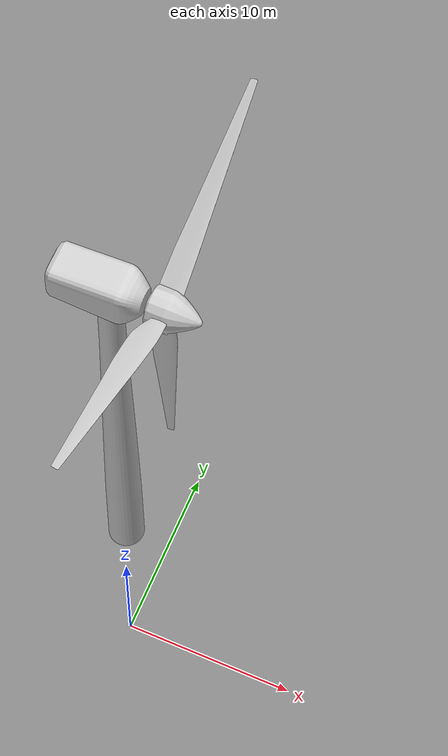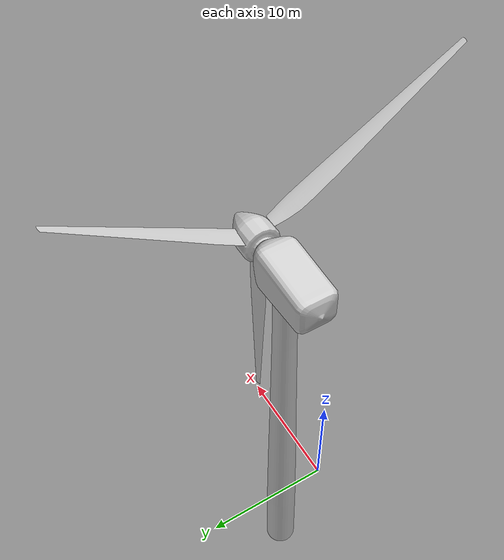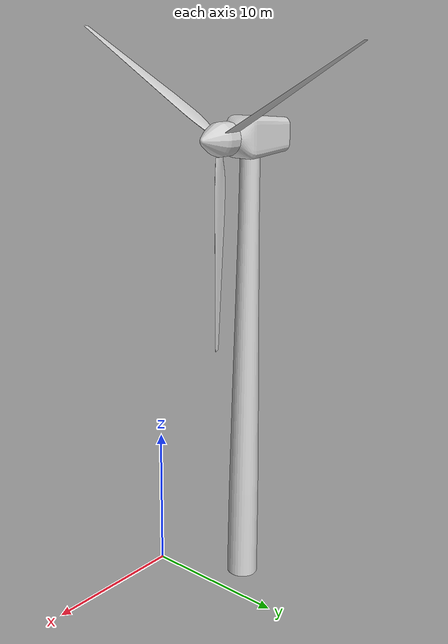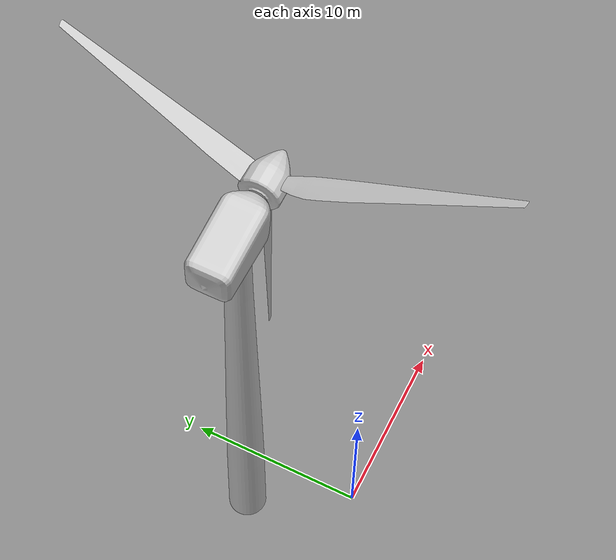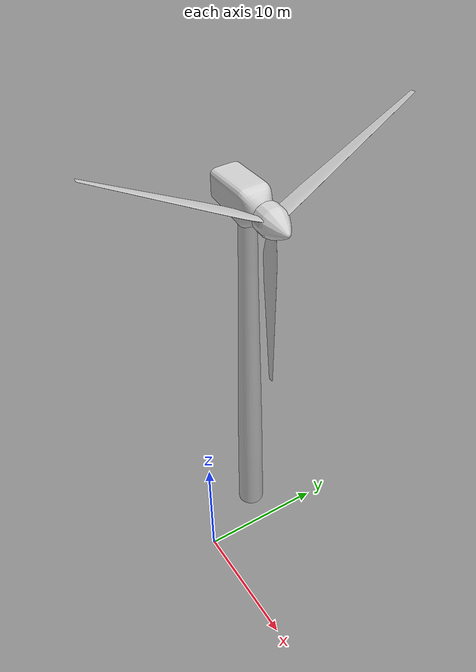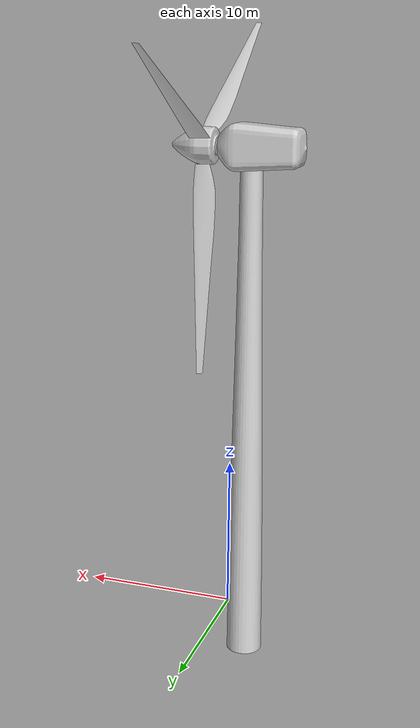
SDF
<sdf version="1.9">
 <world name="js_turbine">
  <physics name="1ms" type="ignore">
   <max_step_size>0.001</max_step_size>
   <real_time_factor>-1.0</real_time_factor>
  </physics>
  <plugin filename="gz-sim-wind-effects-system" name="gz::sim::systems::WindEffects">
   <force_approximation_scaling_factor>1</force_approximation_scaling_factor>
  </plugin>
  <plugin filename="gz-sim-contact-system" name="gz::sim::systems::Contact"/>
  <plugin filename="gz-sim-physics-system" name="gz::sim::systems::Physics"/>
  <plugin filename="gz-sim-sensors-system" name="gz::sim::systems::Sensors">
   <render_engine>ogre2</render_engine>
  </plugin>
  <plugin filename="gz-sim-user-commands-system" name="gz::sim::systems::UserCommands"/>
  <plugin filename="gz-sim-scene-broadcaster-system" name="gz::sim::systems::SceneBroadcaster"/>
  <plugin filename="gz-sim-imu-system" name="gz::sim::systems::Imu"/>
  <plugin filename="gz-sim-navsat-system" name="gz::sim::systems::NavSat"/>
  <scene><ambient>1.0 1.0 1.0</ambient><background>0.8 0.8 0.8</background></scene>
  <spherical_coordinates>
   <latitude_deg>-35.363262</latitude_deg>
   <longitude_deg>149.165237</longitude_deg>
   <elevation>584</elevation>
   <heading_deg>0</heading_deg>
   <surface_model>EARTH_WGS84</surface_model>
  </spherical_coordinates>
  <light type="directional" name="sun">
   <pose>0 0 10 0 0 0</pose>
   <diffuse>0.8 0.8 0.8 1</diffuse>
   <specular>0.2 0.2 0.2 1</specular>
   <attenuation>
    <range>1000</range>
    <constant>0.9</constant>
    <linear>0.01</linear>
    <quadratic>0.001</quadratic>
   </attenuation>
   <direction>-0.4 0.2 -0.8</direction>
  </light>
  <model name="axes">
   <static>1</static>
   <link name="link">
    <sensor name="navsat_sensor" type="navsat"><always_on>1</always_on><update_rate>1</update_rate></sensor>
   </link>
  </model>
  <include><uri>model://wind_turbine</uri><pose degrees="true">-2.736 5.5 0 0 0 90</pose></include>
 </world>
</sdf>

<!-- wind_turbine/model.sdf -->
<sdf version='1.9'>
  <model name='wind_turbine'>
  <static>true</static>
    <link name='tower_link'>
      <collision name="tower_collision">
        <geometry>
          <mesh>
            <uri>model://wind_turbine/meshes/tower.stl</uri>
            <scale> 0.072 0.072 0.125 </scale>
          </mesh>
        </geometry>
      </collision>
      <visual name="tower_visual">
        <geometry>
          <mesh>
            <uri>model://wind_turbine/meshes/tower.stl</uri>
            <scale> 0.072 0.072 0.125 </scale>
          </mesh>
        </geometry>
        <material>
          <ambient>0.8 0.8 0.8 1</ambient>
          <diffuse>0.8 0.8 0.8 1</diffuse>
          <specular>0.1 0.1 0.1 1.0</specular>
           <pbr>
            <metal>
              <roughness>0.6</roughness>
              <metalness>0.6</metalness>
            </metal>
          </pbr>
        </material>
      </visual>
    </link>

    <link name="generator_link">
      <pose relative_to="tower_link">0 0 31.5 0 0 1.57</pose>
      <visual name="generator_visual">
        <geometry>
          <mesh>
            <uri>model://wind_turbine/meshes/generator.stl</uri>
            <scale> 0.072 0.072 0.072 </scale>
          </mesh>
        </geometry>
        <material>
          <ambient>0.8 0.8 0.8 1</ambient>
          <diffuse>0.8 0.8 0.8 1</diffuse>
          <specular>0.1 0.1 0.1 1.0</specular>
           <pbr>
            <metal>
              <roughness>0.6</roughness>
              <metalness>0.6</metalness>
            </metal>
          </pbr>
        </material>
      </visual>
    </link>

    <link name="hub_link">
      <pose relative_to="generator_link">-3.3984 0 0 0 0 0</pose>
      <visual name="hub_visual">
      <geometry>
          <mesh>
            <uri>model://wind_turbine/meshes/hub.stl</uri>
            <scale> 0.072 0.072 0.072 </scale>
          </mesh>
        </geometry>
        <material>
          <ambient>0.8 0.8 0.8 1</ambient>
          <diffuse>0.8 0.8 0.8 1</diffuse>
          <specular>0.1 0.1 0.1 1.0</specular>
           <pbr>
            <metal>
              <roughness>0.6</roughness>
              <metalness>0.6</metalness>
            </metal>
          </pbr>
        </material>
      </visual>
    </link>

    <link name='blade1_link'>
    <pose relative_to="hub_link">0 0 -1.08 0 0 .15</pose>
      <collision name="blade1_collision">
        <geometry>
          <mesh>
            <uri>model://wind_turbine/meshes/blade.stl</uri>
            <scale> 0.05 0.01 0.072 </scale>
          </mesh>
        </geometry>
        <surface>
                <friction>
                    <ode>
                        <mu>
                            10000.0
                        </mu>
                        <mu2>
                            10000.0
                        </mu2>
                    </ode>
                </friction>
                <contact>
                    <ode>
                    <max_vel>0</max_vel>
                    <min_depth>0.001</min_depth>
                    </ode>
                </contact>
                </surface>
      </collision>
      <visual name="blade1_visual">
        <geometry>
          <mesh>
            <uri>model://wind_turbine/meshes/blade.stl</uri>
            <scale> 0.05 0.01 0.072 </scale>
          </mesh>
        </geometry>
        <material>
          <ambient>0.8 0.8 0.8 1</ambient>
          <diffuse>0.8 0.8 0.8 1</diffuse>
          <specular>0.1 0.1 0.1 1.0</specular>
           <pbr>
            <metal>
              <roughness>0.6</roughness>
              <metalness>0.6</metalness>
            </metal>
          </pbr>
        </material>
      </visual>
    </link>

    <link name='blade2_link'>
    <pose relative_to="hub_link">0 0.9353088 0.54 2.0944 0 0</pose>
      <collision name="blade2_collision">
        <geometry>
          <mesh>
            <uri>model://wind_turbine/meshes/blade.stl</uri>
            <scale> 0.05 0.01 0.072 </scale>
          </mesh>
        </geometry>
        <surface>
                <friction>
                    <ode>
                        <mu>
                            10000.0
                        </mu>
                        <mu2>
                            10000.0
                        </mu2>
                    </ode>
                </friction>
                <contact>
                    <ode>
                    <max_vel>0</max_vel>
                    <min_depth>0.001</min_depth>
                    </ode>
                </contact>
                </surface>
      </collision>
      <visual name="blade2_visual">
        <geometry>
          <mesh>
            <uri>model://wind_turbine/meshes/blade.stl</uri>
            <scale> 0.05 0.01 0.072 </scale>
          </mesh>
        </geometry>
        <material>
          <ambient>0.8 0.8 0.8 1</ambient>
          <diffuse>0.8 0.8 0.8 1</diffuse>
          <specular>0.1 0.1 0.1 1.0</specular>
           <pbr>
            <metal>
              <roughness>0.6</roughness>
              <metalness>0.6</metalness>
            </metal>
          </pbr>
        </material>
      </visual>
    </link>

    <link name='blade3_link'>
    <pose relative_to="hub_link">0 0.9353088 -0.54 -2.0944 0 0</pose>
      <collision name="blade3_collision">
        <geometry>
          <mesh>
            <uri>model://wind_turbine/meshes/blade.stl</uri>
            <scale> 0.05 0.01 0.072 </scale>
          </mesh>
        </geometry>
        <surface>
                <friction>
                    <ode>
                        <mu>
                            10000.0
                        </mu>
                        <mu2>
                            10000.0
                        </mu2>
                    </ode>
                </friction>
                <contact>
                    <ode>
                    <max_vel>0</max_vel>
                    <min_depth>0.001</min_depth>
                    </ode>
                </contact>
                </surface>
      </collision>
      <visual name="blade3_visual">
        <geometry>
          <mesh>
            <uri>model://wind_turbine/meshes/blade.stl</uri>
            <scale> 0.05 0.01 0.072 </scale>
          </mesh>
        </geometry>
       <material>
          <ambient>0.8 0.8 0.8 1</ambient>
          <diffuse>0.8 0.8 0.8 1</diffuse>
          <specular>0.1 0.1 0.1 1.0</specular>
           <pbr>
            <metal>
              <roughness>0.6</roughness>
              <metalness>0.6</metalness>
            </metal>
          </pbr>
        </material>
      </visual>
    </link>

  </model>
</sdf>
